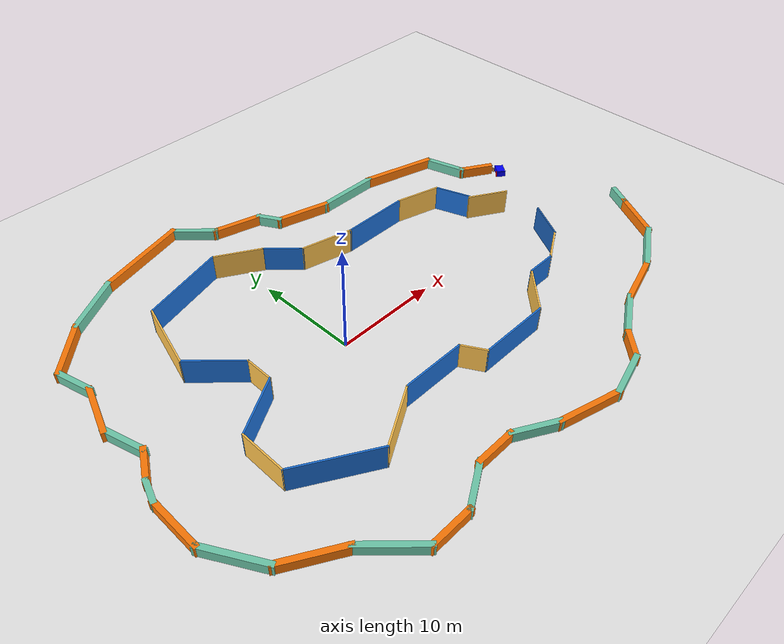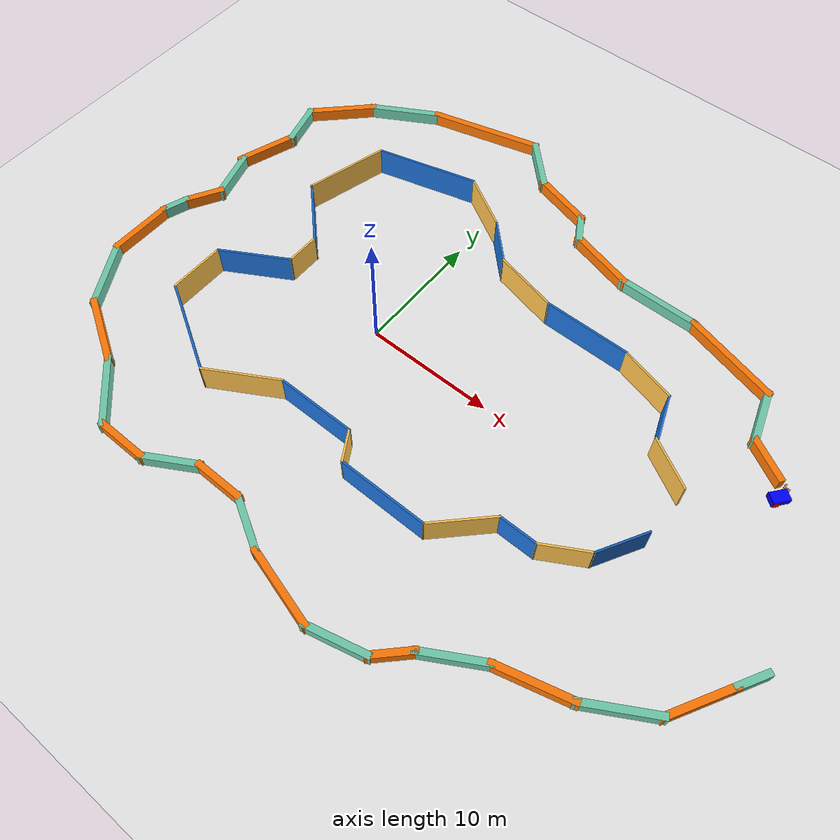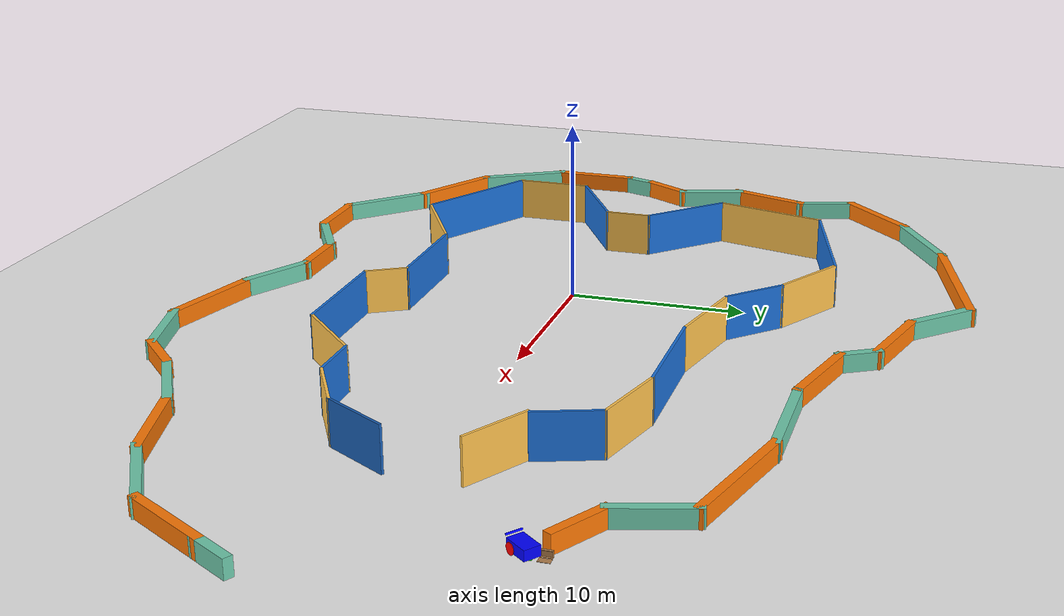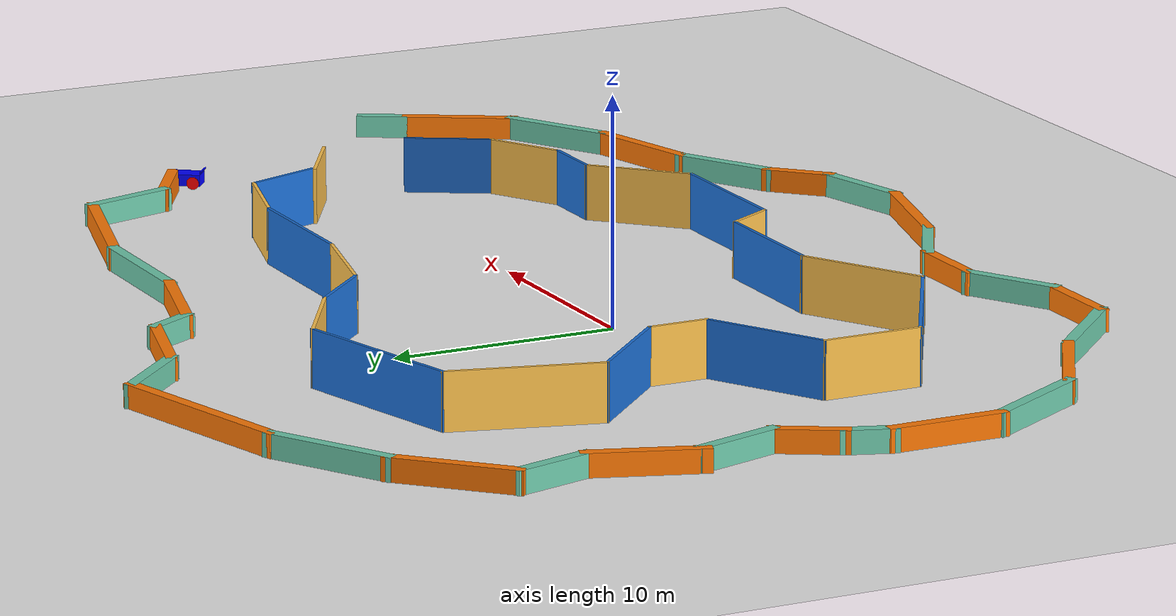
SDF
<sdf version="1.7">
 <world name="default">
  <light name="sun" type="directional">
   <pose>0 0 10 0 -0 0</pose>
   <diffuse>0.8 0.8 0.8 1</diffuse>
   <specular>0.2 0.2 0.2 1</specular>
   <attenuation>
    <range>1000</range>
    <constant>0.9</constant>
    <linear>0.01</linear>
    <quadratic>0.001</quadratic>
   </attenuation>
   <direction>-0.5 0.1 -0.9</direction>
   <spot><inner_angle>0</inner_angle><outer_angle>0</outer_angle><falloff>0</falloff></spot>
  </light>
  <model name="ground_plane">
   <static>1</static>
   <link name="link">
    <collision name="collision">
     <geometry><plane><normal>0 0 1</normal><size>100 100</size></plane></geometry>
     <surface><friction><ode><mu>100</mu><mu2>50</mu2></ode></friction></surface>
    </collision>
    <visual name="visual">
     <cast_shadows>0</cast_shadows>
     <geometry><plane><normal>0 0 1</normal><size>100 100</size></plane></geometry>
     <material>
      <script><uri>file://media/materials/scripts/gazebo.material</uri><name>Gazebo/White</name></script>
     </material>
    </visual>
   </link>
  </model>
  <gravity>0 0 -9.8</gravity>
  <magnetic_field>6e-06 2.3e-05 -4.2e-05</magnetic_field>
  <atmosphere type="adiabatic"/>
  <physics type="ode">
   <max_step_size>0.001</max_step_size>
   <real_time_factor>1</real_time_factor>
   <real_time_update_rate>1000</real_time_update_rate>
  </physics>
  <scene><ambient>0.4 0.4 0.4 1</ambient><background>0.7 0.7 0.7 1</background><shadows>1</shadows></scene>
  <audio><device>default</device></audio>
  <spherical_coordinates>
   <surface_model>EARTH_WGS84</surface_model>
   <latitude_deg>0</latitude_deg>
   <longitude_deg>0</longitude_deg>
   <elevation>0</elevation>
   <heading_deg>0</heading_deg>
  </spherical_coordinates>
  <light name="user_directional_light_0" type="directional">
   <pose>-0.337121 0.392333 1 0 -0 0</pose>
   <diffuse>0.5 0.5 0.5 1</diffuse>
   <specular>0.1 0.1 0.1 1</specular>
   <direction>0.1 0.1 -0.9</direction>
   <attenuation>
    <range>20</range>
    <constant>0.5</constant>
    <linear>0.01</linear>
    <quadratic>0.001</quadratic>
   </attenuation>
   <spot><inner_angle>0</inner_angle><outer_angle>0</outer_angle><falloff>0</falloff></spot>
  </light>
  <model name="Circuit">
   <pose>6.93559 1.41716 0 0 -0 0</pose>
   <link name="Wall_10">
    <collision name="Wall_10_Collision">
     <geometry><box><size>3 0.15 2.5</size></box></geometry>
     <pose>0 0 1.25 0 -0 0</pose>
    </collision>
    <visual name="Wall_10_Visual">
     <pose>0 0 1.25 0 -0 0</pose>
     <geometry><box><size>3 0.15 2.5</size></box></geometry>
     <material>
      <script><uri>file://media/materials/scripts/gazebo.material</uri><name>Gazebo/Grey</name></script>
      <ambient>0.109804 0.443137 0.847059 1</ambient>
     </material>
     <meta><layer>0</layer></meta>
    </visual>
    <pose>10.7132 -8.24887 0 0 -0 3.14159</pose>
   </link>
   <link name="Wall_11">
    <collision name="Wall_11_Collision">
     <geometry><box><size>5 0.15 2.5</size></box></geometry>
     <pose>0 0 1.25 0 -0 0</pose>
    </collision>
    <visual name="Wall_11_Visual">
     <pose>0 0 1.25 0 -0 0</pose>
     <geometry><box><size>5 0.15 2.5</size></box></geometry>
     <material>
      <script><uri>file://media/materials/scripts/gazebo.material</uri><name>Gazebo/Grey</name></script>
      <ambient>1 0.764706 0.305882 1</ambient>
     </material>
     <meta><layer>0</layer></meta>
    </visual>
    <pose>7.57348 -9.9636 0 0 -0 -2.35619</pose>
   </link>
   <link name="Wall_12">
    <collision name="Wall_12_Collision">
     <geometry><box><size>7 0.15 2.5</size></box></geometry>
     <pose>0 0 1.25 0 -0 0</pose>
    </collision>
    <visual name="Wall_12_Visual">
     <pose>0 0 1.25 0 -0 0</pose>
     <geometry><box><size>7 0.15 2.5</size></box></geometry>
     <material>
      <script><uri>file://media/materials/scripts/gazebo.material</uri><name>Gazebo/Grey</name></script>
      <ambient>0.109804 0.443137 0.847059 1</ambient>
     </material>
     <meta><layer>0</layer></meta>
    </visual>
    <pose>2.43374 -11.6783 0 0 -0 3.14159</pose>
   </link>
   <link name="Wall_13">
    <collision name="Wall_13_Collision">
     <geometry><box><size>2.5 0.15 2.5</size></box></geometry>
     <pose>0 0 1.25 0 -0 0</pose>
    </collision>
    <visual name="Wall_13_Visual">
     <pose>0 0 1.25 0 -0 0</pose>
     <geometry><box><size>2.5 0.15 2.5</size></box></geometry>
     <material>
      <script><uri>file://media/materials/scripts/gazebo.material</uri><name>Gazebo/Grey</name></script>
      <ambient>1 0.764706 0.305882 1</ambient>
     </material>
     <meta><layer>0</layer></meta>
    </visual>
    <pose>-1.57876 -10.6608 0 0 -0 2.0944</pose>
   </link>
   <link name="Wall_14">
    <collision name="Wall_14_Collision">
     <geometry><box><size>6.25 0.15 2.5</size></box></geometry>
     <pose>0 0 1.25 0 -0 0</pose>
    </collision>
    <visual name="Wall_14_Visual">
     <pose>0 0 1.25 0 -0 0</pose>
     <geometry><box><size>6.25 0.15 2.5</size></box></geometry>
     <material>
      <script><uri>file://media/materials/scripts/gazebo.material</uri><name>Gazebo/Grey</name></script>
      <ambient>0.109804 0.443137 0.847059 1</ambient>
     </material>
     <meta><layer>0</layer></meta>
    </visual>
    <pose>-5.21626 -9.64317 0 0 -0 3.14159</pose>
   </link>
   <link name="Wall_15">
    <collision name="Wall_15_Collision">
     <geometry><box><size>6 0.15 2.5</size></box></geometry>
     <pose>0 0 1.25 0 -0 0</pose>
    </collision>
    <visual name="Wall_15_Visual">
     <pose>0 0 1.25 0 -0 0</pose>
     <geometry><box><size>6 0.15 2.5</size></box></geometry>
     <material>
      <script><uri>file://media/materials/scripts/gazebo.material</uri><name>Gazebo/Grey</name></script>
      <ambient>1 0.764706 0.305882 1</ambient>
     </material>
     <meta><layer>0</layer></meta>
    </visual>
    <pose>-10.7994 -11.1057 0 0 -0 -2.61799</pose>
   </link>
   <link name="Wall_16">
    <collision name="Wall_16_Collision">
     <geometry><box><size>7.75 0.15 2.5</size></box></geometry>
     <pose>0 0 1.25 0 -0 0</pose>
    </collision>
    <visual name="Wall_16_Visual">
     <pose>0 0 1.25 0 -0 0</pose>
     <geometry><box><size>7.75 0.15 2.5</size></box></geometry>
     <material>
      <script><uri>file://media/materials/scripts/gazebo.material</uri><name>Gazebo/Grey</name></script>
      <ambient>0.109804 0.443137 0.847059 1</ambient>
     </material>
     <meta><layer>0</layer></meta>
    </visual>
    <pose>-16.6234 -10.6682 0 0 -0 2.61799</pose>
   </link>
   <link name="Wall_17">
    <collision name="Wall_17_Collision">
     <geometry><box><size>4.5 0.15 2.5</size></box></geometry>
     <pose>0 0 1.25 0 -0 0</pose>
    </collision>
    <visual name="Wall_17_Visual">
     <pose>0 0 1.25 0 -0 0</pose>
     <geometry><box><size>4.5 0.15 2.5</size></box></geometry>
     <material>
      <script><uri>file://media/materials/scripts/gazebo.material</uri><name>Gazebo/Grey</name></script>
      <ambient>1 0.764706 0.305882 1</ambient>
     </material>
     <meta><layer>0</layer></meta>
    </visual>
    <pose>-19.9143 -6.59317 0 0 -0 1.5708</pose>
   </link>
   <link name="Wall_18">
    <collision name="Wall_18_Collision">
     <geometry><box><size>5.75 0.15 2.5</size></box></geometry>
     <pose>0 0 1.25 0 -0 0</pose>
    </collision>
    <visual name="Wall_18_Visual">
     <pose>0 0 1.25 0 -0 0</pose>
     <geometry><box><size>5.75 0.15 2.5</size></box></geometry>
     <material>
      <script><uri>file://media/materials/scripts/gazebo.material</uri><name>Gazebo/Grey</name></script>
      <ambient>0.109804 0.443137 0.847059 1</ambient>
     </material>
     <meta><layer>0</layer></meta>
    </visual>
    <pose>-17.4894 -3.01817 0 0 -0 0.523599</pose>
   </link>
   <link name="Wall_19">
    <collision name="Wall_19_Collision">
     <geometry><box><size>2.75 0.15 2.5</size></box></geometry>
     <pose>0 0 1.25 0 -0 0</pose>
    </collision>
    <visual name="Wall_19_Visual">
     <pose>0 0 1.25 0 -0 0</pose>
     <geometry><box><size>2.75 0.15 2.5</size></box></geometry>
     <material>
      <script><uri>file://media/materials/scripts/gazebo.material</uri><name>Gazebo/Grey</name></script>
      <ambient>1 0.764706 0.305882 1</ambient>
     </material>
     <meta><layer>0</layer></meta>
    </visual>
    <pose>-15.0646 -0.318175 0 0 -0 1.5708</pose>
   </link>
   <link name="Wall_20">
    <collision name="Wall_20_Collision">
     <geometry><box><size>5.5 0.15 2.5</size></box></geometry>
     <pose>0 0 1.25 0 -0 0</pose>
    </collision>
    <visual name="Wall_20_Visual">
     <pose>0 0 1.25 0 -0 0</pose>
     <geometry><box><size>5.5 0.15 2.5</size></box></geometry>
     <material>
      <script><uri>file://media/materials/scripts/gazebo.material</uri><name>Gazebo/Grey</name></script>
      <ambient>0.109804 0.443137 0.847059 1</ambient>
     </material>
     <meta><layer>0</layer></meta>
    </visual>
    <pose>-16.9561 2.87334 0 0 -0 2.35619</pose>
   </link>
   <link name="Wall_21">
    <collision name="Wall_21_Collision">
     <geometry><box><size>6.75 0.15 2.5</size></box></geometry>
     <pose>0 0 1.25 0 -0 0</pose>
    </collision>
    <visual name="Wall_21_Visual">
     <pose>0 0 1.25 0 -0 0</pose>
     <geometry><box><size>6.75 0.15 2.5</size></box></geometry>
     <material>
      <script><uri>file://media/materials/scripts/gazebo.material</uri><name>Gazebo/Grey</name></script>
      <ambient>1 0.764706 0.305882 1</ambient>
     </material>
     <meta><layer>0</layer></meta>
    </visual>
    <pose>-17.9935 7.9524 0 0 -0 1.309</pose>
   </link>
   <link name="Wall_22">
    <collision name="Wall_22_Collision">
     <geometry><box><size>8.25 0.15 2.5</size></box></geometry>
     <pose>0 0 1.25 0 -0 0</pose>
    </collision>
    <visual name="Wall_22_Visual">
     <pose>0 0 1.25 0 -0 0</pose>
     <geometry><box><size>8.25 0.15 2.5</size></box></geometry>
     <material>
      <script><uri>file://media/materials/scripts/gazebo.material</uri><name>Gazebo/Grey</name></script>
      <ambient>0.109804 0.443137 0.847059 1</ambient>
     </material>
     <meta><layer>0</layer></meta>
    </visual>
    <pose>-13.2274 12.1882 0 0 -0 0.261799</pose>
   </link>
   <link name="Wall_23">
    <collision name="Wall_23_Collision">
     <geometry><box><size>4.75 0.15 2.5</size></box></geometry>
     <pose>0 0 1.25 0 -0 0</pose>
    </collision>
    <visual name="Wall_23_Visual">
     <pose>0 0 1.25 0 -0 0</pose>
     <geometry><box><size>4.75 0.15 2.5</size></box></geometry>
     <material>
      <script><uri>file://media/materials/scripts/gazebo.material</uri><name>Gazebo/Grey</name></script>
      <ambient>1 0.764706 0.305882 1</ambient>
     </material>
     <meta><layer>0</layer></meta>
    </visual>
    <pose>-7.32351 12.0864 0 0 -0 -0.523599</pose>
   </link>
   <link name="Wall_24">
    <collision name="Wall_24_Collision">
     <geometry><box><size>3.75 0.15 2.5</size></box></geometry>
     <pose>0 0 1.25 0 -0 0</pose>
    </collision>
    <visual name="Wall_24_Visual">
     <pose>0 0 1.25 0 -0 0</pose>
     <geometry><box><size>3.75 0.15 2.5</size></box></geometry>
     <material>
      <script><uri>file://media/materials/scripts/gazebo.material</uri><name>Gazebo/Grey</name></script>
      <ambient>0.109804 0.443137 0.847059 1</ambient>
     </material>
     <meta><layer>0</layer></meta>
    </visual>
    <pose>-4.05886 9.6636 0 0 -0 -0.785398</pose>
   </link>
   <link name="Wall_25">
    <collision name="Wall_25_Collision">
     <geometry><box><size>5.17727 0.15 2.5</size></box></geometry>
     <pose>0 0 1.25 0 -0 0</pose>
    </collision>
    <visual name="Wall_25_Visual">
     <pose>0 0 1.25 0 -0 0</pose>
     <geometry><box><size>5.17727 0.15 2.5</size></box></geometry>
     <material>
      <script><uri>file://media/materials/scripts/gazebo.material</uri><name>Gazebo/Grey</name></script>
      <ambient>1 0.764706 0.305882 1</ambient>
     </material>
     <meta><layer>0</layer></meta>
    </visual>
    <pose>-0.336446 7.82717 0 0 -0 -0.226156</pose>
   </link>
   <link name="Wall_27">
    <collision name="Wall_27_Collision">
     <geometry><box><size>3.59941 0.5 1</size></box></geometry>
     <pose>0 0 0.5 0 -0 0</pose>
    </collision>
    <visual name="Wall_27_Visual">
     <pose>0 0 0.5 0 -0 0</pose>
     <geometry><box><size>3.59941 0.5 1</size></box></geometry>
     <material>
      <script><uri>file://media/materials/scripts/gazebo.material</uri><name>Gazebo/Grey</name></script>
      <ambient>0.996078 0.47451 0.0196078 1</ambient>
     </material>
     <meta><layer>0</layer></meta>
    </visual>
    <pose>20.365 7.09375 0 0 -0 2.61788</pose>
   </link>
   <link name="Wall_28">
    <collision name="Wall_28_Collision">
     <geometry><box><size>4.48306 0.5 1</size></box></geometry>
     <pose>0 0 0.5 0 -0 0</pose>
    </collision>
    <visual name="Wall_28_Visual">
     <pose>0 0 0.5 0 -0 0</pose>
     <geometry><box><size>4.48306 0.5 1</size></box></geometry>
     <material>
      <script><uri>file://media/materials/scripts/gazebo.material</uri><name>Gazebo/Grey</name></script>
      <ambient>0.435294 0.796078 0.67451 1</ambient>
     </material>
     <meta><layer>0</layer></meta>
    </visual>
    <pose>18.471 9.78225 0 0 -0 1.85165</pose>
   </link>
   <link name="Wall_29">
    <collision name="Wall_29_Collision">
     <geometry><box><size>7.85035 0.5 1</size></box></geometry>
     <pose>0 0 0.5 0 -0 0</pose>
    </collision>
    <visual name="Wall_29_Visual">
     <pose>0 0 0.5 0 -0 0</pose>
     <geometry><box><size>7.85035 0.5 1</size></box></geometry>
     <material>
      <script><uri>file://media/materials/scripts/gazebo.material</uri><name>Gazebo/Grey</name></script>
      <ambient>0.996078 0.47451 0.0196078 1</ambient>
     </material>
     <meta><layer>0</layer></meta>
    </visual>
    <pose>14.369 12.6468 0 0 -0 2.87985</pose>
   </link>
   <link name="Wall_3">
    <collision name="Wall_3_Collision">
     <geometry><box><size>6.75 0.15 2.5</size></box></geometry>
     <pose>0 0 1.25 0 -0 0</pose>
    </collision>
    <visual name="Wall_3_Visual">
     <pose>0 0 1.25 0 -0 0</pose>
     <geometry><box><size>6.75 0.15 2.5</size></box></geometry>
     <material>
      <script><uri>file://media/materials/scripts/gazebo.material</uri><name>Gazebo/Grey</name></script>
      <ambient>0.109804 0.443137 0.847059 1</ambient>
     </material>
     <meta><layer>0</layer></meta>
    </visual>
    <pose>5.41318 7.26353 0 0 -0 0</pose>
   </link>
   <link name="Wall_30">
    <collision name="Wall_30_Collision">
     <geometry><box><size>6.6 0.5 1</size></box></geometry>
     <pose>0 0 0.5 0 -0 0</pose>
    </collision>
    <visual name="Wall_30_Visual">
     <pose>0 0 0.5 0 -0 0</pose>
     <geometry><box><size>6.6 0.5 1</size></box></geometry>
     <material>
      <script><uri>file://media/materials/scripts/gazebo.material</uri><name>Gazebo/Grey</name></script>
      <ambient>0.435294 0.796078 0.67451 1</ambient>
     </material>
     <meta><layer>0</layer></meta>
    </visual>
    <pose>7.76903 13.5978 0 0 -0 3.14159</pose>
   </link>
   <link name="Wall_31">
    <collision name="Wall_31_Collision">
     <geometry><box><size>5.59983 0.5 1</size></box></geometry>
     <pose>0 0 0.5 0 -0 0</pose>
    </collision>
    <visual name="Wall_31_Visual">
     <pose>0 0 0.5 0 -0 0</pose>
     <geometry><box><size>5.59983 0.5 1</size></box></geometry>
     <material>
      <script><uri>file://media/materials/scripts/gazebo.material</uri><name>Gazebo/Grey</name></script>
      <ambient>0.996078 0.47451 0.0196078 1</ambient>
     </material>
     <meta><layer>0</layer></meta>
    </visual>
    <pose>2.25603 14.2578 0 0 -0 2.87978</pose>
   </link>
   <link name="Wall_32">
    <collision name="Wall_32_Collision">
     <geometry><box><size>2.59991 0.5 1</size></box></geometry>
     <pose>0 0 0.5 0 -0 0</pose>
    </collision>
    <visual name="Wall_32_Visual">
     <pose>0 0 0.5 0 -0 0</pose>
     <geometry><box><size>2.59991 0.5 1</size></box></geometry>
     <material>
      <script><uri>file://media/materials/scripts/gazebo.material</uri><name>Gazebo/Grey</name></script>
      <ambient>0.435294 0.796078 0.67451 1</ambient>
     </material>
     <meta><layer>0</layer></meta>
    </visual>
    <pose>-0.731965 15.8273 0 0 -0 2.09431</pose>
   </link>
   <link name="Wall_33">
    <collision name="Wall_33_Collision">
     <geometry><box><size>5.09995 0.5 1</size></box></geometry>
     <pose>0 0 0.5 0 -0 0</pose>
    </collision>
    <visual name="Wall_33_Visual">
     <pose>0 0 0.5 0 -0 0</pose>
     <geometry><box><size>5.09995 0.5 1</size></box></geometry>
     <material>
      <script><uri>file://media/materials/scripts/gazebo.material</uri><name>Gazebo/Grey</name></script>
      <ambient>0.996078 0.47451 0.0196078 1</ambient>
     </material>
     <meta><layer>0</layer></meta>
    </visual>
    <pose>-3.47846 17.3318 0 0 -0 2.8799</pose>
   </link>
   <link name="Wall_34">
    <collision name="Wall_34_Collision">
     <geometry><box><size>4.60029 0.5 1</size></box></geometry>
     <pose>0 0 0.5 0 -0 0</pose>
    </collision>
    <visual name="Wall_34_Visual">
     <pose>0 0 0.5 0 -0 0</pose>
     <geometry><box><size>4.60029 0.5 1</size></box></geometry>
     <material>
      <script><uri>file://media/materials/scripts/gazebo.material</uri><name>Gazebo/Grey</name></script>
      <ambient>0.435294 0.796078 0.67451 1</ambient>
     </material>
     <meta><layer>0</layer></meta>
    </visual>
    <pose>-7.14947 19.3763 0 0 -0 2.35619</pose>
   </link>
   <link name="Wall_35">
    <collision name="Wall_35_Collision">
     <geometry><box><size>9.35041 0.5 1</size></box></geometry>
     <pose>0 0 0.5 0 -0 0</pose>
    </collision>
    <visual name="Wall_35_Visual">
     <pose>0 0 0.5 0 -0 0</pose>
     <geometry><box><size>9.35041 0.5 1</size></box></geometry>
     <material>
      <script><uri>file://media/materials/scripts/gazebo.material</uri><name>Gazebo/Grey</name></script>
      <ambient>0.996078 0.47451 0.0196078 1</ambient>
     </material>
     <meta><layer>0</layer></meta>
    </visual>
    <pose>-12.8735 19.6808 0 0 -0 -2.87987</pose>
   </link>
   <link name="Wall_36">
    <collision name="Wall_36_Collision">
     <geometry><box><size>6.1001 0.5 1</size></box></geometry>
     <pose>0 0 0.5 0 -0 0</pose>
    </collision>
    <visual name="Wall_36_Visual">
     <pose>0 0 0.5 0 -0 0</pose>
     <geometry><box><size>6.1001 0.5 1</size></box></geometry>
     <material>
      <script><uri>file://media/materials/scripts/gazebo.material</uri><name>Gazebo/Grey</name></script>
      <ambient>0.435294 0.796078 0.67451 1</ambient>
     </material>
     <meta><layer>0</layer></meta>
    </visual>
    <pose>-19.573 17.1358 0 0 -0 -2.61802</pose>
   </link>
   <link name="Wall_37">
    <collision name="Wall_37_Collision">
     <geometry><box><size>5.85001 0.5 1</size></box></geometry>
     <pose>0 0 0.5 0 -0 0</pose>
    </collision>
    <visual name="Wall_37_Visual">
     <pose>0 0 0.5 0 -0 0</pose>
     <geometry><box><size>5.85001 0.5 1</size></box></geometry>
     <material>
      <script><uri>file://media/materials/scripts/gazebo.material</uri><name>Gazebo/Grey</name></script>
      <ambient>0.996078 0.47451 0.0196078 1</ambient>
     </material>
     <meta><layer>0</layer></meta>
    </visual>
    <pose>-23.8895 13.8443 0 0 -0 -2.35619</pose>
   </link>
   <link name="Wall_38">
    <collision name="Wall_38_Collision">
     <geometry><box><size>3.85043 0.5 1</size></box></geometry>
     <pose>0 0 0.5 0 -0 0</pose>
    </collision>
    <visual name="Wall_38_Visual">
     <pose>0 0 0.5 0 -0 0</pose>
     <geometry><box><size>3.85043 0.5 1</size></box></geometry>
     <material>
      <script><uri>file://media/materials/scripts/gazebo.material</uri><name>Gazebo/Grey</name></script>
      <ambient>0.435294 0.796078 0.67451 1</ambient>
     </material>
     <meta><layer>0</layer></meta>
    </visual>
    <pose>-25.3475 10.3348 0 0 -0 -1.30902</pose>
   </link>
   <link name="Wall_39">
    <collision name="Wall_39_Collision">
     <geometry><box><size>5.19667 0.5 1</size></box></geometry>
     <pose>0 0 0.5 0 -0 0</pose>
    </collision>
    <visual name="Wall_39_Visual">
     <pose>0 0 0.5 0 -0 0</pose>
     <geometry><box><size>5.19667 0.5 1</size></box></geometry>
     <material>
      <script><uri>file://media/materials/scripts/gazebo.material</uri><name>Gazebo/Grey</name></script>
      <ambient>0.996078 0.47451 0.0196078 1</ambient>
     </material>
     <meta><layer>0</layer></meta>
    </visual>
    <pose>-25.6637 6.4913 0 0 -0 -1.89573</pose>
   </link>
   <link name="Wall_4">
    <collision name="Wall_4_Collision">
     <geometry><box><size>4.5 0.15 2.5</size></box></geometry>
     <pose>0 0 1.25 0 -0 0</pose>
    </collision>
    <visual name="Wall_4_Visual">
     <pose>0 0 1.25 0 -0 0</pose>
     <geometry><box><size>4.5 0.15 2.5</size></box></geometry>
     <material>
      <script><uri>file://media/materials/scripts/gazebo.material</uri><name>Gazebo/Grey</name></script>
      <ambient>1 0.764706 0.305882 1</ambient>
     </material>
     <meta><layer>0</layer></meta>
    </visual>
    <pose>10.8141 6.7006 0 0 -0 -0.261799</pose>
   </link>
   <link name="Wall_40">
    <collision name="Wall_40_Collision">
     <geometry><box><size>4.27218 0.5 1</size></box></geometry>
     <pose>0 0 0.5 0 -0 0</pose>
    </collision>
    <visual name="Wall_40_Visual">
     <pose>0 0 0.5 0 -0 0</pose>
     <geometry><box><size>4.27218 0.5 1</size></box></geometry>
     <material>
      <script><uri>file://media/materials/scripts/gazebo.material</uri><name>Gazebo/Grey</name></script>
      <ambient>0.435294 0.796078 0.67451 1</ambient>
     </material>
     <meta><layer>0</layer></meta>
    </visual>
    <pose>-25.7629 2.57903 0 0 -0 -1.28819</pose>
   </link>
   <link name="Wall_41">
    <collision name="Wall_41_Collision">
     <geometry><box><size>3.34948 0.5 1</size></box></geometry>
     <pose>0 0 0.5 0 -0 0</pose>
    </collision>
    <visual name="Wall_41_Visual">
     <pose>0 0 0.5 0 -0 0</pose>
     <geometry><box><size>3.34948 0.5 1</size></box></geometry>
     <material>
      <script><uri>file://media/materials/scripts/gazebo.material</uri><name>Gazebo/Grey</name></script>
      <ambient>0.996078 0.47451 0.0196078 1</ambient>
     </material>
     <meta><layer>0</layer></meta>
    </visual>
    <pose>-25.9495 -0.466246 0 0 -0 -2.09443</pose>
   </link>
   <link name="Wall_42">
    <collision name="Wall_42_Collision">
     <geometry><box><size>2.40156 0.5 1</size></box></geometry>
     <pose>0 0 0.5 0 -0 0</pose>
    </collision>
    <visual name="Wall_42_Visual">
     <pose>0 0 0.5 0 -0 0</pose>
     <geometry><box><size>2.40156 0.5 1</size></box></geometry>
     <material>
      <script><uri>file://media/materials/scripts/gazebo.material</uri><name>Gazebo/Grey</name></script>
      <ambient>0.435294 0.796078 0.67451 1</ambient>
     </material>
     <meta><layer>0</layer></meta>
    </visual>
    <pose>-26.9695 -2.59975 0 0 -0 -1.9002</pose>
   </link>
   <link name="Wall_43">
    <collision name="Wall_43_Collision">
     <geometry><box><size>5.35039 0.5 1</size></box></geometry>
     <pose>0 0 0.5 0 -0 0</pose>
    </collision>
    <visual name="Wall_43_Visual">
     <pose>0 0 0.5 0 -0 0</pose>
     <geometry><box><size>5.35039 0.5 1</size></box></geometry>
     <material>
      <script><uri>file://media/materials/scripts/gazebo.material</uri><name>Gazebo/Grey</name></script>
      <ambient>0.996078 0.47451 0.0196078 1</ambient>
     </material>
     <meta><layer>0</layer></meta>
    </visual>
    <pose>-27.277 -5.92425 0 0 -0 -1.5708</pose>
   </link>
   <link name="Wall_44">
    <collision name="Wall_44_Collision">
     <geometry><box><size>5.85066 0.5 1</size></box></geometry>
     <pose>0 0 0.5 0 -0 0</pose>
    </collision>
    <visual name="Wall_44_Visual">
     <pose>0 0 0.5 0 -0 0</pose>
     <geometry><box><size>5.85066 0.5 1</size></box></geometry>
     <material>
      <script><uri>file://media/materials/scripts/gazebo.material</uri><name>Gazebo/Grey</name></script>
      <ambient>0.435294 0.796078 0.67451 1</ambient>
     </material>
     <meta><layer>0</layer></meta>
    </visual>
    <pose>-25.9395 -10.6662 0 0 -0 -1.04727</pose>
   </link>
   <link name="Wall_45">
    <collision name="Wall_45_Collision">
     <geometry><box><size>5.84986 0.5 1</size></box></geometry>
     <pose>0 0 0.5 0 -0 0</pose>
    </collision>
    <visual name="Wall_45_Visual">
     <pose>0 0 0.5 0 -0 0</pose>
     <geometry><box><size>5.84986 0.5 1</size></box></geometry>
     <material>
      <script><uri>file://media/materials/scripts/gazebo.material</uri><name>Gazebo/Grey</name></script>
      <ambient>0.996078 0.47451 0.0196078 1</ambient>
     </material>
     <meta><layer>0</layer></meta>
    </visual>
    <pose>-22.2855 -14.3207 0 0 -0 -0.523621</pose>
   </link>
   <link name="Wall_46">
    <collision name="Wall_46_Collision">
     <geometry><box><size>5.84994 0.5 1</size></box></geometry>
     <pose>0 0 0.5 0 -0 0</pose>
    </collision>
    <visual name="Wall_46_Visual">
     <pose>0 0 0.5 0 -0 0</pose>
     <geometry><box><size>5.84994 0.5 1</size></box></geometry>
     <material>
      <script><uri>file://media/materials/scripts/gazebo.material</uri><name>Gazebo/Grey</name></script>
      <ambient>0.435294 0.796078 0.67451 1</ambient>
     </material>
     <meta><layer>0</layer></meta>
    </visual>
    <pose>-18.0775 -17.5497 0 0 -0 -0.785398</pose>
   </link>
   <link name="Wall_47">
    <collision name="Wall_47_Collision">
     <geometry><box><size>4.35032 0.5 1</size></box></geometry>
     <pose>0 0 0.5 0 -0 0</pose>
    </collision>
    <visual name="Wall_47_Visual">
     <pose>0 0 0.5 0 -0 0</pose>
     <geometry><box><size>4.35032 0.5 1</size></box></geometry>
     <material>
      <script><uri>file://media/materials/scripts/gazebo.material</uri><name>Gazebo/Grey</name></script>
      <ambient>0.996078 0.47451 0.0196078 1</ambient>
     </material>
     <meta><layer>0</layer></meta>
    </visual>
    <pose>-14.261 -19.4412 0 0 -0 0</pose>
   </link>
   <link name="Wall_48">
    <collision name="Wall_48_Collision">
     <geometry><box><size>4.60045 0.5 1</size></box></geometry>
     <pose>0 0 0.5 0 -0 0</pose>
    </collision>
    <visual name="Wall_48_Visual">
     <pose>0 0 0.5 0 -0 0</pose>
     <geometry><box><size>4.60045 0.5 1</size></box></geometry>
     <material>
      <script><uri>file://media/materials/scripts/gazebo.material</uri><name>Gazebo/Grey</name></script>
      <ambient>0.435294 0.796078 0.67451 1</ambient>
     </material>
     <meta><layer>0</layer></meta>
    </visual>
    <pose>-10.5605 -18.4162 0 0 -0 0.523563</pose>
   </link>
   <link name="Wall_49">
    <collision name="Wall_49_Collision">
     <geometry><box><size>4.10002 0.5 1</size></box></geometry>
     <pose>0 0 0.5 0 -0 0</pose>
    </collision>
    <visual name="Wall_49_Visual">
     <pose>0 0 0.5 0 -0 0</pose>
     <geometry><box><size>4.10002 0.5 1</size></box></geometry>
     <material>
      <script><uri>file://media/materials/scripts/gazebo.material</uri><name>Gazebo/Grey</name></script>
      <ambient>0.996078 0.47451 0.0196078 1</ambient>
     </material>
     <meta><layer>0</layer></meta>
    </visual>
    <pose>-6.98496 -17.3912 0 0 -0 0</pose>
   </link>
   <link name="Wall_5">
    <collision name="Wall_5_Collision">
     <geometry><box><size>3.60787 0.15 2.5</size></box></geometry>
     <pose>0 0 1.25 0 -0 0</pose>
    </collision>
    <visual name="Wall_5_Visual">
     <pose>0 0 1.25 0 -0 0</pose>
     <geometry><box><size>3.60787 0.15 2.5</size></box></geometry>
     <material>
      <script><uri>file://media/materials/scripts/gazebo.material</uri><name>Gazebo/Grey</name></script>
      <ambient>0.109804 0.443137 0.847059 1</ambient>
     </material>
     <meta><layer>0</layer></meta>
    </visual>
    <pose>13.4884 4.50661 0 0 -0 -1.23269</pose>
   </link>
   <link name="Wall_50">
    <collision name="Wall_50_Collision">
     <geometry><box><size>4.55988 0.5 1</size></box></geometry>
     <pose>0 0 0.5 0 -0 0</pose>
    </collision>
    <visual name="Wall_50_Visual">
     <pose>0 0 0.5 0 -0 0</pose>
     <geometry><box><size>4.55988 0.5 1</size></box></geometry>
     <material>
      <script><uri>file://media/materials/scripts/gazebo.material</uri><name>Gazebo/Grey</name></script>
      <ambient>0.435294 0.796078 0.67451 1</ambient>
     </material>
     <meta><layer>0</layer></meta>
    </visual>
    <pose>-3.40947 -18.3752 0 0 -0 -0.50607</pose>
   </link>
   <link name="Wall_51">
    <collision name="Wall_51_Collision">
     <geometry><box><size>6.34968 0.5 1</size></box></geometry>
     <pose>0 0 0.5 0 -0 0</pose>
    </collision>
    <visual name="Wall_51_Visual">
     <pose>0 0 0.5 0 -0 0</pose>
     <geometry><box><size>6.34968 0.5 1</size></box></geometry>
     <material>
      <script><uri>file://media/materials/scripts/gazebo.material</uri><name>Gazebo/Grey</name></script>
      <ambient>0.996078 0.47451 0.0196078 1</ambient>
     </material>
     <meta><layer>0</layer></meta>
    </visual>
    <pose>1.19104 -20.1162 0 0 -0 -0.261814</pose>
   </link>
   <link name="Wall_52">
    <collision name="Wall_52_Collision">
     <geometry><box><size>4.82994 0.5 1</size></box></geometry>
     <pose>0 0 0.5 0 -0 0</pose>
    </collision>
    <visual name="Wall_52_Visual">
     <pose>0 0 0.5 0 -0 0</pose>
     <geometry><box><size>4.82994 0.5 1</size></box></geometry>
     <material>
      <script><uri>file://media/materials/scripts/gazebo.material</uri><name>Gazebo/Grey</name></script>
      <ambient>0.435294 0.796078 0.67451 1</ambient>
     </material>
     <meta><layer>0</layer></meta>
    </visual>
    <pose>6.11703 -20.3512 0 0 -0 0.243522</pose>
   </link>
   <link name="Wall_53">
    <collision name="Wall_53_Collision">
     <geometry><box><size>3.35021 0.5 1</size></box></geometry>
     <pose>0 0 0.5 0 -0 0</pose>
    </collision>
    <visual name="Wall_53_Visual">
     <pose>0 0 0.5 0 -0 0</pose>
     <geometry><box><size>3.35021 0.5 1</size></box></geometry>
     <material>
      <script><uri>file://media/materials/scripts/gazebo.material</uri><name>Gazebo/Grey</name></script>
      <ambient>0.996078 0.47451 0.0196078 1</ambient>
     </material>
     <meta><layer>0</layer></meta>
    </visual>
    <pose>9.22554 -18.8217 0 0 -0 0.785398</pose>
   </link>
   <link name="Wall_54">
    <collision name="Wall_54_Collision">
     <geometry><box><size>5.10056 0.5 1</size></box></geometry>
     <pose>0 0 0.5 0 -0 0</pose>
    </collision>
    <visual name="Wall_54_Visual">
     <pose>0 0 0.5 0 -0 0</pose>
     <geometry><box><size>5.10056 0.5 1</size></box></geometry>
     <material>
      <script><uri>file://media/materials/scripts/gazebo.material</uri><name>Gazebo/Grey</name></script>
      <ambient>0.435294 0.796078 0.67451 1</ambient>
     </material>
     <meta><layer>0</layer></meta>
    </visual>
    <pose>12.225 -16.6642 0 0 -0 0.523568</pose>
   </link>
   <link name="Wall_55">
    <collision name="Wall_55_Collision">
     <geometry><box><size>5.85023 0.5 1</size></box></geometry>
     <pose>0 0 0.5 0 -0 0</pose>
    </collision>
    <visual name="Wall_55_Visual">
     <pose>0 0 0.5 0 -0 0</pose>
     <geometry><box><size>5.85023 0.5 1</size></box></geometry>
     <material>
      <script><uri>file://media/materials/scripts/gazebo.material</uri><name>Gazebo/Grey</name></script>
      <ambient>0.996078 0.47451 0.0196078 1</ambient>
     </material>
     <meta><layer>0</layer></meta>
    </visual>
    <pose>16.801 -14.8217 0 0 -0 0.261842</pose>
   </link>
   <link name="Wall_56">
    <collision name="Wall_56_Collision">
     <geometry><box><size>5.5999 0.5 1</size></box></geometry>
     <pose>0 0 0.5 0 -0 0</pose>
    </collision>
    <visual name="Wall_56_Visual">
     <pose>0 0 0.5 0 -0 0</pose>
     <geometry><box><size>5.5999 0.5 1</size></box></geometry>
     <material>
      <script><uri>file://media/materials/scripts/gazebo.material</uri><name>Gazebo/Grey</name></script>
      <ambient>0.435294 0.796078 0.67451 1</ambient>
     </material>
     <meta><layer>0</layer></meta>
    </visual>
    <pose>21.5935 -12.8542 0 0 -0 0.523572</pose>
   </link>
   <link name="Wall_57">
    <collision name="Wall_57_Collision">
     <geometry><box><size>5.34984 0.5 1</size></box></geometry>
     <pose>0 0 0.5 0 -0 0</pose>
    </collision>
    <visual name="Wall_57_Visual">
     <pose>0 0 0.5 0 -0 0</pose>
     <geometry><box><size>5.34984 0.5 1</size></box></geometry>
     <material>
      <script><uri>file://media/materials/scripts/gazebo.material</uri><name>Gazebo/Grey</name></script>
      <ambient>0.996078 0.47451 0.0196078 1</ambient>
     </material>
     <meta><layer>0</layer></meta>
    </visual>
    <pose>25.0145 -9.47925 0 0 -0 1.04717</pose>
   </link>
   <link name="Wall_58">
    <collision name="Wall_58_Collision">
     <geometry><box><size>2.60004 0.5 1</size></box></geometry>
     <pose>0 0 0.5 0 -0 0</pose>
    </collision>
    <visual name="Wall_58_Visual">
     <pose>0 0 0.5 0 -0 0</pose>
     <geometry><box><size>2.60004 0.5 1</size></box></geometry>
     <material>
      <script><uri>file://media/materials/scripts/gazebo.material</uri><name>Gazebo/Grey</name></script>
      <ambient>0.435294 0.796078 0.67451 1</ambient>
     </material>
     <meta><layer>0</layer></meta>
    </visual>
    <pose>26.752 -6.46975 0 0 -0 1.04728</pose>
   </link>
   <link name="Wall_6">
    <collision name="Wall_6_Collision">
     <geometry><box><size>4 0.15 2.5</size></box></geometry>
     <pose>0 0 1.25 0 -0 0</pose>
    </collision>
    <visual name="Wall_6_Visual">
     <pose>0 0 1.25 0 -0 0</pose>
     <geometry><box><size>4 0.15 2.5</size></box></geometry>
     <material>
      <script><uri>file://media/materials/scripts/gazebo.material</uri><name>Gazebo/Grey</name></script>
      <ambient>1 0.764706 0.305882 1</ambient>
     </material>
     <meta><layer>0</layer></meta>
    </visual>
    <pose>15.6214 1.80544 0 0 -0 -0.523599</pose>
   </link>
   <link name="Wall_8">
    <collision name="Wall_8_Collision">
     <geometry><box><size>4 0.15 2.5</size></box></geometry>
     <pose>0 0 1.25 0 -0 0</pose>
    </collision>
    <visual name="Wall_8_Visual">
     <pose>0 0 1.25 0 -0 0</pose>
     <geometry><box><size>4 0.15 2.5</size></box></geometry>
     <material>
      <script><uri>file://media/materials/scripts/gazebo.material</uri><name>Gazebo/Grey</name></script>
      <ambient>0.101961 0.372549 0.705882 1</ambient>
     </material>
     <meta><layer>0</layer></meta>
    </visual>
    <pose>16.2184 -4.78177 0 0 -0 -2.0944</pose>
   </link>
   <link name="Wall_9">
    <collision name="Wall_9_Collision">
     <geometry><box><size>3.75 0.15 2.5</size></box></geometry>
     <pose>0 0 1.25 0 -0 0</pose>
    </collision>
    <visual name="Wall_9_Visual">
     <pose>0 0 1.25 0 -0 0</pose>
     <geometry><box><size>3.75 0.15 2.5</size></box></geometry>
     <material>
      <script><uri>file://media/materials/scripts/gazebo.material</uri><name>Gazebo/Grey</name></script>
      <ambient>1 0.764706 0.305882 1</ambient>
     </material>
     <meta><layer>0</layer></meta>
    </visual>
    <pose>13.6971 -7.34887 0 0 -0 -2.61799</pose>
   </link>
   <static>1</static>
  </model>
  <model name="wooden_case">
   <link name="base">
    <pose>0 0 0.024 0 -0 0</pose>
    <inertial>
     <pose>-0.022184 0 0.171592 0 -0 0</pose>
     <mass>3.96264</mass>
     <inertia>
      <ixx>0.213536</ixx>
      <ixy>0</ixy>
      <ixz>0.000779377</ixz>
      <iyy>0.0708943</iyy>
      <iyz>0</iyz>
      <izz>0.154604</izz>
     </inertia>
    </inertial>
    <collision name="collision_back">
     <pose>-0.053975 0 0.1778 0 -0 0</pose>
     <geometry><box><size>0.01905 0.5461 0.3175</size></box></geometry>
     <surface>
      <contact>
       <poissons_ratio>0.347</poissons_ratio>
       <elastic_modulus>8.8e+09</elastic_modulus>
       <ode><kp>100000</kp><kd>100</kd><max_vel>100</max_vel><min_depth>0.001</min_depth></ode>
      </contact>
      <friction>
       <torsional>
        <coefficient>1</coefficient>
        <use_patch_radius>0</use_patch_radius>
        <surface_radius>0.01</surface_radius>
       </torsional>
      </friction>
     </surface>
    </collision>
    <visual name="visual_back">
     <pose>-0.053975 0 0.1778 0 -0 0</pose>
     <geometry><box><size>0.01905 0.5461 0.3175</size></box></geometry>
     <material>
      <script><uri>file://media/materials/scripts/gazebo.material</uri><name>Gazebo/Wood</name></script>
     </material>
    </visual>
    <collision name="collision_bottom">
     <pose>0 0 0.009525 0 -0 0</pose>
     <geometry><box><size>0.127 0.5842 0.01905</size></box></geometry>
     <surface>
      <contact>
       <poissons_ratio>0.347</poissons_ratio>
       <elastic_modulus>8.8e+09</elastic_modulus>
       <ode><kp>100000</kp><kd>100</kd><max_vel>100</max_vel><min_depth>0.001</min_depth></ode>
      </contact>
      <friction>
       <torsional>
        <coefficient>1</coefficient>
        <use_patch_radius>0</use_patch_radius>
        <surface_radius>0.01</surface_radius>
       </torsional>
      </friction>
     </surface>
    </collision>
    <visual name="visual_bottom">
     <pose>0 0 0.009525 0 -0 0</pose>
     <geometry><box><size>0.127 0.5842 0.01905</size></box></geometry>
     <material>
      <script><uri>file://media/materials/scripts/gazebo.material</uri><name>Gazebo/Wood</name></script>
     </material>
    </visual>
    <collision name="collision_top">
     <pose>0 0 0.346075 0 -0 0</pose>
     <geometry><box><size>0.127 0.5842 0.01905</size></box></geometry>
     <surface>
      <contact>
       <poissons_ratio>0.347</poissons_ratio>
       <elastic_modulus>8.8e+09</elastic_modulus>
       <ode><kp>100000</kp><kd>100</kd><max_vel>100</max_vel><min_depth>0.001</min_depth></ode>
      </contact>
      <friction>
       <torsional>
        <coefficient>1</coefficient>
        <use_patch_radius>0</use_patch_radius>
        <surface_radius>0.01</surface_radius>
       </torsional>
      </friction>
     </surface>
    </collision>
    <visual name="visual_top">
     <pose>0 0 0.346075 0 -0 0</pose>
     <geometry><box><size>0.127 0.5842 0.01905</size></box></geometry>
     <material>
      <script><uri>file://media/materials/scripts/gazebo.material</uri><name>Gazebo/Wood</name></script>
     </material>
    </visual>
    <collision name="collision_left">
     <pose>0 -0.282575 0.1778 0 -0 0</pose>
     <geometry><box><size>0.127 0.01905 0.3175</size></box></geometry>
     <surface>
      <contact>
       <poissons_ratio>0.347</poissons_ratio>
       <elastic_modulus>8.8e+09</elastic_modulus>
       <ode><kp>100000</kp><kd>100</kd><max_vel>100</max_vel><min_depth>0.001</min_depth></ode>
      </contact>
      <friction>
       <torsional>
        <coefficient>1</coefficient>
        <use_patch_radius>0</use_patch_radius>
        <surface_radius>0.01</surface_radius>
       </torsional>
      </friction>
     </surface>
    </collision>
    <visual name="visual_left">
     <pose>0 -0.282575 0.1778 0 -0 0</pose>
     <geometry><box><size>0.127 0.01905 0.3175</size></box></geometry>
     <material>
      <script><uri>file://media/materials/scripts/gazebo.material</uri><name>Gazebo/Wood</name></script>
     </material>
    </visual>
    <collision name="collision_right">
     <pose>0 0.282575 0.1778 0 -0 0</pose>
     <geometry><box><size>0.127 0.01905 0.3175</size></box></geometry>
     <surface>
      <contact>
       <poissons_ratio>0.347</poissons_ratio>
       <elastic_modulus>8.8e+09</elastic_modulus>
       <ode><kp>100000</kp><kd>100</kd><max_vel>100</max_vel><min_depth>0.001</min_depth></ode>
      </contact>
      <friction>
       <torsional>
        <coefficient>1</coefficient>
        <use_patch_radius>0</use_patch_radius>
        <surface_radius>0.01</surface_radius>
       </torsional>
      </friction>
     </surface>
    </collision>
    <visual name="visual_right">
     <pose>0 0.282575 0.1778 0 -0 0</pose>
     <geometry><box><size>0.127 0.01905 0.3175</size></box></geometry>
     <material>
      <script><uri>file://media/materials/scripts/gazebo.material</uri><name>Gazebo/Wood</name></script>
     </material>
    </visual>
    <collision name="collision_block_left">
     <pose>0.0095 -0.2151 -0.012 0 -0 0</pose>
     <geometry><box><size>0.108 0.05 0.024</size></box></geometry>
     <surface>
      <contact>
       <poissons_ratio>0.347</poissons_ratio>
       <elastic_modulus>8.8e+09</elastic_modulus>
       <ode><kp>100000</kp><kd>100</kd><max_vel>100</max_vel><min_depth>0.001</min_depth></ode>
      </contact>
      <friction>
       <torsional>
        <coefficient>1</coefficient>
        <use_patch_radius>0</use_patch_radius>
        <surface_radius>0.01</surface_radius>
       </torsional>
      </friction>
     </surface>
    </collision>
    <visual name="visual_block_left">
     <pose>0.0095 -0.2151 -0.012 0 -0 0</pose>
     <geometry><box><size>0.108 0.05 0.024</size></box></geometry>
     <material>
      <script><uri>file://media/materials/scripts/gazebo.material</uri><name>Gazebo/Wood</name></script>
     </material>
    </visual>
    <collision name="collision_block_right">
     <pose>0.0095 0.2151 -0.012 0 -0 0</pose>
     <geometry><box><size>0.108 0.05 0.024</size></box></geometry>
     <surface>
      <contact>
       <poissons_ratio>0.347</poissons_ratio>
       <elastic_modulus>8.8e+09</elastic_modulus>
       <ode><kp>100000</kp><kd>100</kd><max_vel>100</max_vel><min_depth>0.001</min_depth></ode>
      </contact>
      <friction>
       <torsional>
        <coefficient>1</coefficient>
        <use_patch_radius>0</use_patch_radius>
        <surface_radius>0.01</surface_radius>
       </torsional>
      </friction>
     </surface>
    </collision>
    <visual name="visual_block_right">
     <pose>0.0095 0.2151 -0.012 0 -0 0</pose>
     <geometry><box><size>0.108 0.05 0.024</size></box></geometry>
     <material>
      <script><uri>file://media/materials/scripts/gazebo.material</uri><name>Gazebo/Wood</name></script>
     </material>
    </visual>
   </link>
   <link name="lid">
    <pose>0.243775 0 0.009525 0 -0 0</pose>
    <inertial>
     <mass>1.97874</mass>
     <inertia>
      <ixx>0.0563367</ixx>
      <ixy>0</ixy>
      <ixz>0</ixz>
      <iyy>0.020911</iyy>
      <iyz>0</iyz>
      <izz>0.0771281</izz>
     </inertia>
    </inertial>
    <collision name="collision">
     <geometry><box><size>0.3556 0.5842 0.01905</size></box></geometry>
     <surface>
      <contact>
       <poissons_ratio>0.347</poissons_ratio>
       <elastic_modulus>8.8e+09</elastic_modulus>
       <ode><kp>100000</kp><kd>100</kd><max_vel>100</max_vel><min_depth>0.001</min_depth></ode>
      </contact>
      <friction>
       <torsional>
        <coefficient>1</coefficient>
        <use_patch_radius>0</use_patch_radius>
        <surface_radius>0.01</surface_radius>
       </torsional>
      </friction>
     </surface>
    </collision>
    <visual name="visual">
     <geometry><box><size>0.3556 0.5842 0.01905</size></box></geometry>
     <material>
      <script><uri>file://media/materials/scripts/gazebo.material</uri><name>Gazebo/Wood</name></script>
     </material>
    </visual>
    <visual name="tee_nut_1">
     <pose>0.122 -0.216 0 0 -0 0</pose>
     <geometry><cylinder><radius>0.00635</radius><length>0.0192405</length></cylinder></geometry>
     <material>
      <script><uri>file://media/materials/scripts/gazebo.material</uri><name>Gazebo/Grey</name></script>
     </material>
    </visual>
    <visual name="tee_nut_2">
     <pose>0.122 -0.088 0 0 -0 0</pose>
     <geometry><cylinder><radius>0.00635</radius><length>0.0192405</length></cylinder></geometry>
     <material>
      <script><uri>file://media/materials/scripts/gazebo.material</uri><name>Gazebo/Grey</name></script>
     </material>
    </visual>
    <visual name="tee_nut_3">
     <pose>0.122 0.088 0 0 -0 0</pose>
     <geometry><cylinder><radius>0.00635</radius><length>0.0192405</length></cylinder></geometry>
     <material>
      <script><uri>file://media/materials/scripts/gazebo.material</uri><name>Gazebo/Grey</name></script>
     </material>
    </visual>
    <visual name="tee_nut_4">
     <pose>0.122 0.216 0 0 -0 0</pose>
     <geometry><cylinder><radius>0.00635</radius><length>0.0192405</length></cylinder></geometry>
     <material>
      <script><uri>file://media/materials/scripts/gazebo.material</uri><name>Gazebo/Grey</name></script>
     </material>
    </visual>
   </link>
   <joint name="lid_hinge" type="revolute">
    <pose>-0.1778 0 0.01905 0 -0 0</pose>
    <parent>base</parent>
    <child>lid</child>
    <axis>
     <xyz>0 1 0</xyz>
     <limit><upper>0.523599</upper><lower>-1.5708</lower></limit>
     <dynamics><spring_reference>0</spring_reference><spring_stiffness>0</spring_stiffness></dynamics>
    </axis>
   </joint>
   <pose>29.1683 7.69668 -0.001059 -8e-06 -0.000503 0.000482</pose>
  </model>
  <model name="jetbot_sim" canonical_link="chassis">
   <pose>29.2396 6.73374 0.003352 3e-06 -0.004701 -2.24524</pose>
   <link name="camera_chassis">
    <pose relative_to="chassis">0.7 0 0.385 0 0.436332 0</pose>
    <inertial>
     <mass>0.1</mass>
     <inertia><ixx>0.145833</ixx><ixy>0</ixy><ixz>0</ixz><iyy>0.145833</iyy><iyz>0</iyz><izz>0.125</izz></inertia>
    </inertial>
    <visual name="visual">
     <geometry><box><size>0.05 0.85 0.1</size></box></geometry>
     <material>
      <ambient>0.0 0.0 1.0 1</ambient>
      <diffuse>0.0 0.0 1.0 1</diffuse>
      <specular>0.0 0.0 1.0 1</specular>
     </material>
    </visual>
    <collision name="collision"><geometry><box><size>0.1 0.85 0.1</size></box></geometry></collision>
   </link>
   <link name="chassis">
    <pose relative_to="__model__">0 0 0.4 0 0 0</pose>
    <inertial>
     <mass>11.4395</mass>
     <inertia>
      <ixx>0.688753</ixx>
      <ixy>0</ixy>
      <ixz>0</ixz>
      <iyy>1.686278</iyy>
      <iyz>0</iyz>
      <izz>2.375031</izz>
     </inertia>
    </inertial>
    <visual name="visual">
     <geometry><box><size>1.33 0.85 0.53</size></box></geometry>
     <material>
      <ambient>0.0 0.0 1.0 1</ambient>
      <diffuse>0.0 0.0 1.0 1</diffuse>
      <specular>0.0 0.0 1.0 1</specular>
     </material>
    </visual>
    <collision name="collision"><geometry><box><size>1.33 0.85 0.53</size></box></geometry></collision>
    <sensor name="camera/left" type="camera">
     <pose relative_to="camera_chassis">0 0.0364902851051 0 0 0 0</pose>
     <topic>camera/left/</topic>
     <camera>
      <horizontal_fov>2.44346</horizontal_fov>
      <image><width>500</width><height>300</height><format>L8</format></image>
      <clip><near>0.1</near><far>100</far></clip>
      <lens>
       <intrinsics>
        <fx>307.99879313442784</fx>
        <fy>328.57751082369407</fy>
        <cx>280.24657373225784</cx>
        <cy>134.9335316514946</cy>
        <s>0</s>
       </intrinsics>
       <projection>
        <p_fx>312.8884288345382</p_fx>
        <p_fy>312.8884288345382</p_fy>
        <p_cx>312.28302001953125</p_cx>
        <p_cy>135.72957611083984</p_cy>
        <tx>0.0</tx>
        <ty>0.0</ty>
       </projection>
      </lens>
     </camera>
     <always_on>1</always_on>
     <update_rate>4</update_rate>
     <visualize>true</visualize>
     <plugin name="camera_left_controller" filename="libgazebo_ros_camera.so">
      <frame_name>camera_left</frame_name>
     </plugin>
    </sensor>
    <sensor name="camera/right" type="camera">
     <pose relative_to="camera_chassis">0 -0.0364902851051 0 0 0 0</pose>
     <topic>camera/right/</topic>
     <camera>
      <horizontal_fov>2.44346</horizontal_fov>
      <image><width>500</width><height>300</height><format>L8</format></image>
      <clip><near>0.1</near><far>35</far></clip>
      <lens>
       <intrinsics>
        <fx>307.1754049460059</fx>
        <fy>328.803046449949</fy>
        <cx>265.74658118131305</cx>
        <cy>141.73334383034592</cy>
        <s>0</s>
       </intrinsics>
       <projection>
        <p_fx>312.8884288345382</p_fx>
        <p_fy>312.8884288345382</p_fy>
        <p_cx>312.28302001953125</p_cx>
        <p_cy>135.72957611083984</p_cy>
        <tx>-22.834775948524072</tx>
        <ty>0.0</ty>
       </projection>
      </lens>
     </camera>
     <always_on>1</always_on>
     <update_rate>4</update_rate>
     <visualize>true</visualize>
     <plugin name="camera_right_controller" filename="libgazebo_ros_camera.so">
      <frame_name>camera_right</frame_name>
     </plugin>
    </sensor>
   </link>
   <link name="left_wheel">
    <pose relative_to="chassis">0.35 0.44 -0.12 -1.5707 0 0</pose>
    <inertial>
     <mass>2</mass>
     <inertia><ixx>0.145833</ixx><ixy>0</ixy><ixz>0</ixz><iyy>0.145833</iyy><iyz>0</iyz><izz>0.125</izz></inertia>
    </inertial>
    <visual name="visual">
     <geometry><cylinder><radius>0.285</radius><length>0.04</length></cylinder></geometry>
     <material>
      <ambient>1.0 0.0 0.0 1</ambient>
      <diffuse>1.0 0.0 0.0 1</diffuse>
      <specular>1.0 0.0 0.0 1</specular>
     </material>
    </visual>
    <collision name="collision">
     <geometry><cylinder><radius>0.285</radius><length>0.04</length></cylinder></geometry>
    </collision>
   </link>
   <link name="right_wheel">
    <pose relative_to="chassis">0.35 -0.44 -0.12 -1.5707 0 0</pose>
    <inertial>
     <mass>2</mass>
     <inertia>
      <ixx>0.040879</ixx>
      <ixy>0</ixy>
      <ixz>0</ixz>
      <iyy>0.040879</iyy>
      <iyz>0</iyz>
      <izz>0.081225</izz>
     </inertia>
    </inertial>
    <visual name="visual">
     <geometry><cylinder><radius>0.285</radius><length>0.04</length></cylinder></geometry>
     <material>
      <ambient>1.0 0.0 0.0 1</ambient>
      <diffuse>1.0 0.0 0.0 1</diffuse>
      <specular>1.0 0.0 0.0 1</specular>
     </material>
    </visual>
    <collision name="collision">
     <geometry><cylinder><radius>0.285</radius><length>0.04</length></cylinder></geometry>
    </collision>
   </link>
   <frame name="caster_frame" attached_to="chassis"><pose>-0.5 0 -0.271 0 0 0</pose></frame>
   <link name="caster">
    <pose relative_to="caster_frame"/>
    <inertial>
     <mass>2</mass>
     <inertia><ixx>0.01352</ixx><ixy>0</ixy><ixz>0</ixz><iyy>0.01352</iyy><iyz>0</iyz><izz>0.01352</izz></inertia>
    </inertial>
    <visual name="visual">
     <geometry><sphere><radius>0.13</radius></sphere></geometry>
     <material>
      <ambient>0.0 1 0.0 1</ambient>
      <diffuse>0.0 1 0.0 1</diffuse>
      <specular>0.0 1 0.0 1</specular>
     </material>
    </visual>
    <collision name="collision"><geometry><sphere><radius>0.13</radius></sphere></geometry></collision>
   </link>
   <joint name="cam_joint" type="fixed">
    <pose relative_to="chassis"/>
    <parent>chassis</parent>
    <child>camera_chassis</child>
    <axis>
     <xyz expressed_in="__model__">1 0 0</xyz>
     <limit><lower>-1.79769e+308</lower><upper>1.79769e+308</upper></limit>
    </axis>
   </joint>
   <joint name="left_wheel_joint" type="revolute">
    <pose relative_to="left_wheel"/>
    <parent>chassis</parent>
    <child>left_wheel</child>
    <axis>
     <xyz expressed_in="__model__">0 1 0</xyz>
     <limit><lower>-1.79769e+308</lower><upper>1.79769e+308</upper></limit>
    </axis>
   </joint>
   <joint name="right_wheel_joint" type="revolute">
    <pose relative_to="right_wheel"/>
    <parent>chassis</parent>
    <child>right_wheel</child>
    <axis>
     <xyz expressed_in="__model__">0 1 0</xyz>
     <limit><lower>-1.79769e+308</lower><upper>1.79769e+308</upper></limit>
    </axis>
   </joint>
   <joint name="caster_wheel" type="ball"><parent>chassis</parent><child>caster</child></joint>
   <plugin name="diff_drive" filename="libgazebo_ros_diff_drive.so">
    <left_joint>left_wheel_joint</left_joint>
    <right_joint>right_wheel_joint</right_joint>
    <wheel_separation>0.44</wheel_separation>
    <wheel_diameter>0.57</wheel_diameter>
    <max_wheel_torque>20</max_wheel_torque>
    <max_wheel_acceleration>1.0</max_wheel_acceleration>
    <publish_odom>1</publish_odom>
    <publish_odom_tf>1</publish_odom_tf>
   </plugin>
  </model>
 </world>
</sdf>
